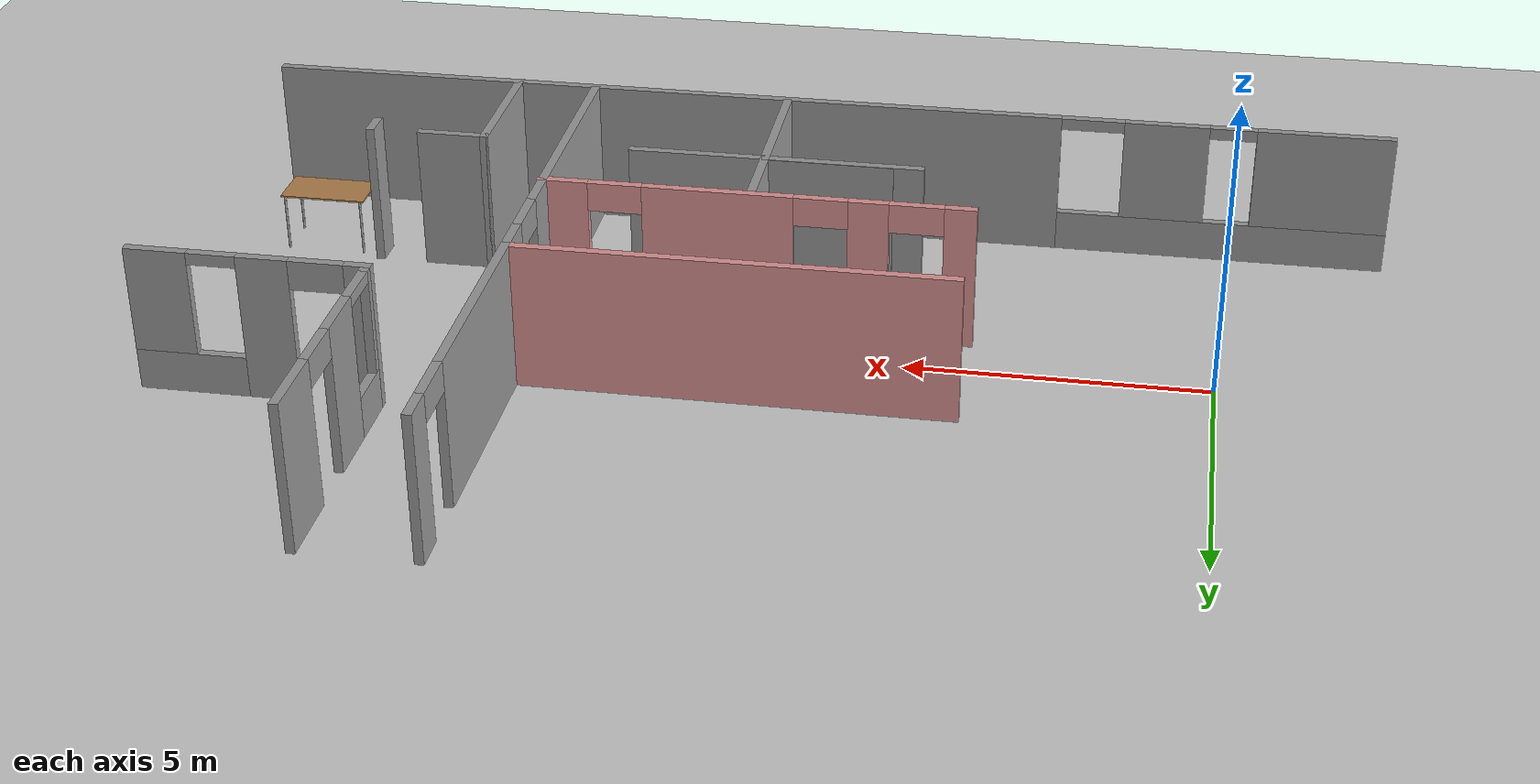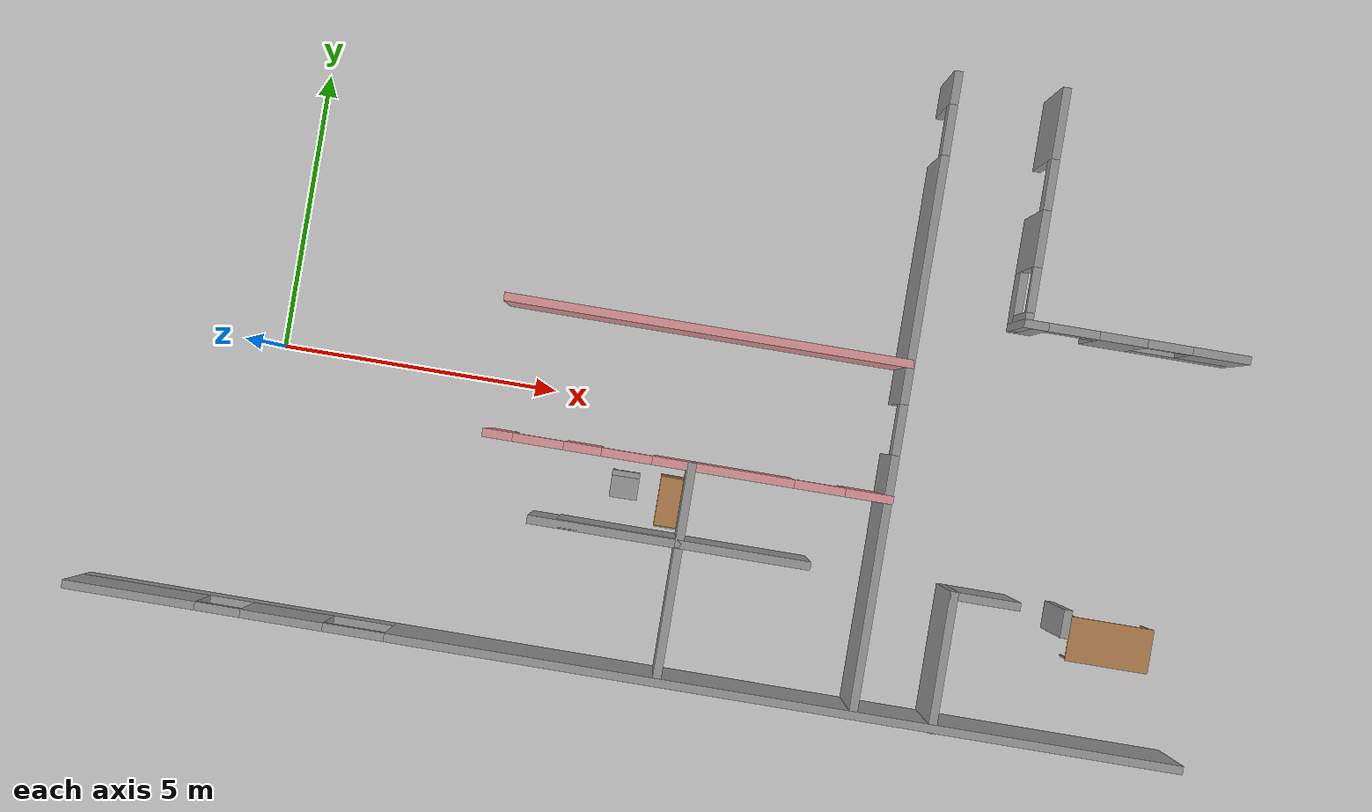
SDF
<sdf version="1.6">
 <world name="default">
  <model name="ground_plane">
   <static>1</static>
   <link name="link">
    <collision name="collision">
     <geometry><plane><normal>0 0 1</normal><size>100 100</size></plane></geometry>
     <surface>
      <contact><collide_bitmask>65535</collide_bitmask></contact>
      <friction><ode><mu>100</mu><mu2>50</mu2></ode></friction>
     </surface>
    </collision>
    <visual name="visual">
     <cast_shadows>0</cast_shadows>
     <geometry><plane><normal>0 0 1</normal><size>100 100</size></plane></geometry>
     <material>
      <script><uri>file://media/materials/scripts/gazebo.material</uri><name>Gazebo/Grey</name></script>
     </material>
    </visual>
   </link>
  </model>
  <model name="dunder_mifflin_scranton_full">
   <pose>4.5312 0.479645 0 0 -0 0</pose>
   <link name="Wall_31">
    <collision name="Wall_31_Collision">
     <geometry><box><size>7.25 0.15 2.5</size></box></geometry>
     <pose>0 0 1.25 0 -0 0</pose>
    </collision>
    <visual name="Wall_31_Visual">
     <pose>0 0 1.25 0 -0 0</pose>
     <geometry><box><size>7.25 0.15 2.5</size></box></geometry>
     <material>
      <script><uri>file://media/materials/scripts/gazebo.material</uri><name>Gazebo/Grey</name></script>
      <ambient>0.866667 0.584314 0.584314 1</ambient>
     </material>
     <meta><layer>0</layer></meta>
    </visual>
    <pose>3.02474 0.997169 0 0 -0 0</pose>
   </link>
   <link name="Wall_32">
    <pose>6.57474 -2.05283 0 0 -0 -1.5708</pose>
    <visual name="Wall_32_Visual_0">
     <pose>-2.72846 0 1.25 0 -0 0</pose>
     <geometry><box><size>0.793072 0.15 2.5</size></box></geometry>
     <material>
      <script><uri>file://media/materials/scripts/gazebo.material</uri><name>Gazebo/Grey</name></script>
      <ambient>1 1 1 1</ambient>
     </material>
     <meta><layer>0</layer></meta>
    </visual>
    <collision name="Wall_32_Collision_0">
     <geometry><box><size>0.793072 0.15 2.5</size></box></geometry>
     <pose>-2.72846 0 1.25 0 -0 0</pose>
    </collision>
    <visual name="Wall_32_Visual_1">
     <pose>0.846536 0 1.25 0 -0 0</pose>
     <geometry><box><size>4.55693 0.15 2.5</size></box></geometry>
     <material>
      <script><uri>file://media/materials/scripts/gazebo.material</uri><name>Gazebo/Grey</name></script>
      <ambient>1 1 1 1</ambient>
     </material>
     <meta><layer>0</layer></meta>
    </visual>
    <collision name="Wall_32_Collision_1">
     <geometry><box><size>4.55693 0.15 2.5</size></box></geometry>
     <pose>0.846536 0 1.25 0 -0 0</pose>
    </collision>
    <visual name="Wall_32_Visual_2">
     <pose>-1.88193 0 2.25 0 -0 0</pose>
     <geometry><box><size>0.9 0.15 0.5</size></box></geometry>
     <material>
      <script><uri>file://media/materials/scripts/gazebo.material</uri><name>Gazebo/Grey</name></script>
      <ambient>1 1 1 1</ambient>
     </material>
     <meta><layer>0</layer></meta>
    </visual>
    <collision name="Wall_32_Collision_2">
     <geometry><box><size>0.9 0.15 0.5</size></box></geometry>
     <pose>-1.88193 0 2.25 0 -0 0</pose>
    </collision>
   </link>
   <link name="Wall_34">
    <pose>3.04223 -1.39897 0 0 -0 0</pose>
    <visual name="Wall_34_Visual_0">
     <pose>-3.36018 0 1.25 0 -0 0</pose>
     <geometry><box><size>0.529643 0.15 2.5</size></box></geometry>
     <material>
      <script><uri>file://media/materials/scripts/gazebo.material</uri><name>Gazebo/Grey</name></script>
      <ambient>0.866667 0.584314 0.584314 1</ambient>
     </material>
     <meta><layer>0</layer></meta>
    </visual>
    <collision name="Wall_34_Collision_0">
     <geometry><box><size>0.529643 0.15 2.5</size></box></geometry>
     <pose>-3.36018 0 1.25 0 -0 0</pose>
    </collision>
    <visual name="Wall_34_Visual_1">
     <pose>-1.86211 0 1.25 0 -0 0</pose>
     <geometry><box><size>0.666501 0.15 2.5</size></box></geometry>
     <material>
      <script><uri>file://media/materials/scripts/gazebo.material</uri><name>Gazebo/Grey</name></script>
      <ambient>0.866667 0.584314 0.584314 1</ambient>
     </material>
     <meta><layer>0</layer></meta>
    </visual>
    <collision name="Wall_34_Collision_1">
     <geometry><box><size>0.666501 0.15 2.5</size></box></geometry>
     <pose>-1.86211 0 1.25 0 -0 0</pose>
    </collision>
    <visual name="Wall_34_Visual_2">
     <pose>0.624524 0 1.25 0 -0 0</pose>
     <geometry><box><size>2.50676 0.15 2.5</size></box></geometry>
     <material>
      <script><uri>file://media/materials/scripts/gazebo.material</uri><name>Gazebo/Grey</name></script>
      <ambient>0.866667 0.584314 0.584314 1</ambient>
     </material>
     <meta><layer>0</layer></meta>
    </visual>
    <collision name="Wall_34_Collision_2">
     <geometry><box><size>2.50676 0.15 2.5</size></box></geometry>
     <pose>0.624524 0 1.25 0 -0 0</pose>
    </collision>
    <visual name="Wall_34_Visual_3">
     <pose>3.20145 0 1.25 0 -0 0</pose>
     <geometry><box><size>0.847096 0.15 2.5</size></box></geometry>
     <material>
      <script><uri>file://media/materials/scripts/gazebo.material</uri><name>Gazebo/Grey</name></script>
      <ambient>0.866667 0.584314 0.584314 1</ambient>
     </material>
     <meta><layer>0</layer></meta>
    </visual>
    <collision name="Wall_34_Collision_3">
     <geometry><box><size>0.847096 0.15 2.5</size></box></geometry>
     <pose>3.20145 0 1.25 0 -0 0</pose>
    </collision>
    <visual name="Wall_34_Visual_4">
     <pose>-2.64536 0 2.25 0 -0 0</pose>
     <geometry><box><size>0.9 0.15 0.5</size></box></geometry>
     <material>
      <script><uri>file://media/materials/scripts/gazebo.material</uri><name>Gazebo/Grey</name></script>
      <ambient>0.866667 0.584314 0.584314 1</ambient>
     </material>
     <meta><layer>0</layer></meta>
    </visual>
    <collision name="Wall_34_Collision_4">
     <geometry><box><size>0.9 0.15 0.5</size></box></geometry>
     <pose>-2.64536 0 2.25 0 -0 0</pose>
    </collision>
    <visual name="Wall_34_Visual_5">
     <pose>-1.07886 0 2.25 0 -0 0</pose>
     <geometry><box><size>0.9 0.15 0.5</size></box></geometry>
     <material>
      <script><uri>file://media/materials/scripts/gazebo.material</uri><name>Gazebo/Grey</name></script>
      <ambient>0.866667 0.584314 0.584314 1</ambient>
     </material>
     <meta><layer>0</layer></meta>
    </visual>
    <collision name="Wall_34_Collision_5">
     <geometry><box><size>0.9 0.15 0.5</size></box></geometry>
     <pose>-1.07886 0 2.25 0 -0 0</pose>
    </collision>
    <visual name="Wall_34_Visual_6">
     <pose>2.3279 0 2.25 0 -0 0</pose>
     <geometry><box><size>0.9 0.15 0.5</size></box></geometry>
     <material>
      <script><uri>file://media/materials/scripts/gazebo.material</uri><name>Gazebo/Grey</name></script>
      <ambient>0.866667 0.584314 0.584314 1</ambient>
     </material>
     <meta><layer>0</layer></meta>
    </visual>
    <collision name="Wall_34_Collision_6">
     <geometry><box><size>0.9 0.15 0.5</size></box></geometry>
     <pose>2.3279 0 2.25 0 -0 0</pose>
    </collision>
   </link>
   <link name="Wall_36">
    <pose>6.57474 3.54717 0 0 -0 1.5708</pose>
    <visual name="Wall_36_Visual_0">
     <pose>-0.74582 0 1.25 0 -0 0</pose>
     <geometry><box><size>3.75836 0.15 2.5</size></box></geometry>
     <material>
      <script><uri>file://media/materials/scripts/gazebo.material</uri><name>Gazebo/Grey</name></script>
      <ambient>1 1 1 1</ambient>
     </material>
     <meta><layer>0</layer></meta>
    </visual>
    <collision name="Wall_36_Collision_0">
     <geometry><box><size>3.75836 0.15 2.5</size></box></geometry>
     <pose>-0.74582 0 1.25 0 -0 0</pose>
    </collision>
    <visual name="Wall_36_Visual_1">
     <pose>2.32918 0 1.25 0 -0 0</pose>
     <geometry><box><size>0.591641 0.15 2.5</size></box></geometry>
     <material>
      <script><uri>file://media/materials/scripts/gazebo.material</uri><name>Gazebo/Grey</name></script>
      <ambient>1 1 1 1</ambient>
     </material>
     <meta><layer>0</layer></meta>
    </visual>
    <collision name="Wall_36_Collision_1">
     <geometry><box><size>0.591641 0.15 2.5</size></box></geometry>
     <pose>2.32918 0 1.25 0 -0 0</pose>
    </collision>
    <visual name="Wall_36_Visual_2">
     <pose>1.58336 0 2.25 0 -0 0</pose>
     <geometry><box><size>0.9 0.15 0.5</size></box></geometry>
     <material>
      <script><uri>file://media/materials/scripts/gazebo.material</uri><name>Gazebo/Grey</name></script>
      <ambient>1 1 1 1</ambient>
     </material>
     <meta><layer>0</layer></meta>
    </visual>
    <collision name="Wall_36_Collision_2">
     <geometry><box><size>0.9 0.15 0.5</size></box></geometry>
     <pose>1.58336 0 2.25 0 -0 0</pose>
    </collision>
   </link>
   <link name="Wall_38">
    <pose>8.48212 4.07176 0 0 -0 -1.5708</pose>
    <visual name="Wall_38_Visual_0">
     <pose>-1.4899 0 1.25 0 -0 0</pose>
     <geometry><box><size>1.27021 0.15 2.5</size></box></geometry>
     <material>
      <script><uri>file://media/materials/scripts/gazebo.material</uri><name>Gazebo/Grey</name></script>
      <ambient>0.423529 0.423529 0.423529 1</ambient>
     </material>
     <meta><layer>0</layer></meta>
    </visual>
    <collision name="Wall_38_Collision_0">
     <geometry><box><size>1.27021 0.15 2.5</size></box></geometry>
     <pose>-1.4899 0 1.25 0 -0 0</pose>
    </collision>
    <visual name="Wall_38_Visual_1">
     <pose>0.548931 0 1.25 0 -0 0</pose>
     <geometry><box><size>1.00745 0.15 2.5</size></box></geometry>
     <material>
      <script><uri>file://media/materials/scripts/gazebo.material</uri><name>Gazebo/Grey</name></script>
      <ambient>0.423529 0.423529 0.423529 1</ambient>
     </material>
     <meta><layer>0</layer></meta>
    </visual>
    <collision name="Wall_38_Collision_1">
     <geometry><box><size>1.00745 0.15 2.5</size></box></geometry>
     <pose>0.548931 0 1.25 0 -0 0</pose>
    </collision>
    <visual name="Wall_38_Visual_2">
     <pose>1.58883 0 0.35 0 -0 0</pose>
     <geometry><box><size>1.07234 0.15 0.7</size></box></geometry>
     <material>
      <script><uri>file://media/materials/scripts/gazebo.material</uri><name>Gazebo/Grey</name></script>
      <ambient>0.423529 0.423529 0.423529 1</ambient>
     </material>
     <meta><layer>0</layer></meta>
    </visual>
    <collision name="Wall_38_Collision_2">
     <geometry><box><size>1.07234 0.15 0.7</size></box></geometry>
     <pose>1.58883 0 0.35 0 -0 0</pose>
    </collision>
    <visual name="Wall_38_Visual_3">
     <pose>1.98883 0 1.6 0 -0 0</pose>
     <geometry><box><size>0.272344 0.15 1.8</size></box></geometry>
     <material>
      <script><uri>file://media/materials/scripts/gazebo.material</uri><name>Gazebo/Grey</name></script>
      <ambient>0.423529 0.423529 0.423529 1</ambient>
     </material>
     <meta><layer>0</layer></meta>
    </visual>
    <collision name="Wall_38_Collision_3">
     <geometry><box><size>0.272344 0.15 1.8</size></box></geometry>
     <pose>1.98883 0 1.6 0 -0 0</pose>
    </collision>
    <visual name="Wall_38_Visual_4">
     <pose>-0.404794 0 2.25 0 -0 0</pose>
     <geometry><box><size>0.9 0.15 0.5</size></box></geometry>
     <material>
      <script><uri>file://media/materials/scripts/gazebo.material</uri><name>Gazebo/Grey</name></script>
      <ambient>0.423529 0.423529 0.423529 1</ambient>
     </material>
     <meta><layer>0</layer></meta>
    </visual>
    <collision name="Wall_38_Collision_4">
     <geometry><box><size>0.9 0.15 0.5</size></box></geometry>
     <pose>-0.404794 0 2.25 0 -0 0</pose>
    </collision>
    <visual name="Wall_38_Visual_5">
     <pose>1.45266 0 2.4 0 -0 0</pose>
     <geometry><box><size>0.8 0.15 0.2</size></box></geometry>
     <material>
      <script><uri>file://media/materials/scripts/gazebo.material</uri><name>Gazebo/Grey</name></script>
      <ambient>0.423529 0.423529 0.423529 1</ambient>
     </material>
     <meta><layer>0</layer></meta>
    </visual>
    <collision name="Wall_38_Collision_5">
     <geometry><box><size>0.8 0.15 0.2</size></box></geometry>
     <pose>1.45266 0 2.4 0 -0 0</pose>
    </collision>
   </link>
   <link name="Wall_39">
    <pose>10.4071 2.02176 0 0 -0 0</pose>
    <visual name="Wall_39_Visual_0">
     <pose>-1.78157 0 1.25 0 -0 0</pose>
     <geometry><box><size>0.436869 0.15 2.5</size></box></geometry>
     <material>
      <script><uri>file://media/materials/scripts/gazebo.material</uri><name>Gazebo/Grey</name></script>
      <ambient>0.423529 0.423529 0.423529 1</ambient>
     </material>
     <meta><layer>0</layer></meta>
    </visual>
    <collision name="Wall_39_Collision_0">
     <geometry><box><size>0.436869 0.15 2.5</size></box></geometry>
     <pose>-1.78157 0 1.25 0 -0 0</pose>
    </collision>
    <visual name="Wall_39_Visual_1">
     <pose>-0.241405 0 1.25 0 -0 0</pose>
     <geometry><box><size>0.843451 0.15 2.5</size></box></geometry>
     <material>
      <script><uri>file://media/materials/scripts/gazebo.material</uri><name>Gazebo/Grey</name></script>
      <ambient>0.423529 0.423529 0.423529 1</ambient>
     </material>
     <meta><layer>0</layer></meta>
    </visual>
    <collision name="Wall_39_Collision_1">
     <geometry><box><size>0.843451 0.15 2.5</size></box></geometry>
     <pose>-0.241405 0 1.25 0 -0 0</pose>
    </collision>
    <visual name="Wall_39_Visual_2">
     <pose>1.09016 0 0.35 0 -0 0</pose>
     <geometry><box><size>1.81968 0.15 0.7</size></box></geometry>
     <material>
      <script><uri>file://media/materials/scripts/gazebo.material</uri><name>Gazebo/Grey</name></script>
      <ambient>0.423529 0.423529 0.423529 1</ambient>
     </material>
     <meta><layer>0</layer></meta>
    </visual>
    <collision name="Wall_39_Collision_2">
     <geometry><box><size>1.81968 0.15 0.7</size></box></geometry>
     <pose>1.09016 0 0.35 0 -0 0</pose>
    </collision>
    <visual name="Wall_39_Visual_3">
     <pose>1.49016 0 1.6 0 -0 0</pose>
     <geometry><box><size>1.01968 0.15 1.8</size></box></geometry>
     <material>
      <script><uri>file://media/materials/scripts/gazebo.material</uri><name>Gazebo/Grey</name></script>
      <ambient>0.423529 0.423529 0.423529 1</ambient>
     </material>
     <meta><layer>0</layer></meta>
    </visual>
    <collision name="Wall_39_Collision_3">
     <geometry><box><size>1.01968 0.15 1.8</size></box></geometry>
     <pose>1.49016 0 1.6 0 -0 0</pose>
    </collision>
    <visual name="Wall_39_Visual_4">
     <pose>-1.11313 0 2.25 0 -0 0</pose>
     <geometry><box><size>0.9 0.15 0.5</size></box></geometry>
     <material>
      <script><uri>file://media/materials/scripts/gazebo.material</uri><name>Gazebo/Grey</name></script>
      <ambient>0.423529 0.423529 0.423529 1</ambient>
     </material>
     <meta><layer>0</layer></meta>
    </visual>
    <collision name="Wall_39_Collision_4">
     <geometry><box><size>0.9 0.15 0.5</size></box></geometry>
     <pose>-1.11313 0 2.25 0 -0 0</pose>
    </collision>
    <visual name="Wall_39_Visual_5">
     <pose>0.58032 0 2.4 0 -0 0</pose>
     <geometry><box><size>0.8 0.15 0.2</size></box></geometry>
     <material>
      <script><uri>file://media/materials/scripts/gazebo.material</uri><name>Gazebo/Grey</name></script>
      <ambient>0.423529 0.423529 0.423529 1</ambient>
     </material>
     <meta><layer>0</layer></meta>
    </visual>
    <collision name="Wall_39_Collision_5">
     <geometry><box><size>0.8 0.15 0.2</size></box></geometry>
     <pose>0.58032 0 2.4 0 -0 0</pose>
    </collision>
   </link>
   <link name="Wall_42">
    <collision name="Wall_42_Collision">
     <geometry><box><size>0.5 0.15 2.5</size></box></geometry>
     <pose>0 0 1.25 0 -0 0</pose>
    </collision>
    <visual name="Wall_42_Visual">
     <pose>0 0 1.25 0 -0 0</pose>
     <geometry><box><size>0.5 0.15 2.5</size></box></geometry>
     <material>
      <script><uri>file://media/materials/scripts/gazebo.material</uri><name>Gazebo/Grey</name></script>
      <ambient>1 1 1 1</ambient>
     </material>
     <meta><layer>0</layer></meta>
    </visual>
    <pose>9.97994 -3.02564 0 0 -0 -1.5708</pose>
   </link>
   <link name="Wall_44">
    <collision name="Wall_44_Collision">
     <geometry><box><size>2.5 0.15 2.5</size></box></geometry>
     <pose>0 0 1.25 0 -0 0</pose>
    </collision>
    <visual name="Wall_44_Visual">
     <pose>0 0 1.25 0 -0 0</pose>
     <geometry><box><size>2.5 0.15 2.5</size></box></geometry>
     <material>
      <script><uri>file://media/materials/scripts/gazebo.material</uri><name>Gazebo/Grey</name></script>
      <ambient>1 1 1 1</ambient>
     </material>
     <meta><layer>0</layer></meta>
    </visual>
    <pose>7.97491 -4.0368 0 0 -0 1.5708</pose>
   </link>
   <link name="Wall_45">
    <collision name="Wall_45_Collision">
     <geometry><box><size>1.25 0.15 2.5</size></box></geometry>
     <pose>0 0 1.25 0 -0 0</pose>
    </collision>
    <visual name="Wall_45_Visual">
     <pose>0 0 1.25 0 -0 0</pose>
     <geometry><box><size>1.25 0.15 2.5</size></box></geometry>
     <material>
      <script><uri>file://media/materials/scripts/gazebo.material</uri><name>Gazebo/Grey</name></script>
      <ambient>1 1 1 1</ambient>
     </material>
     <meta><layer>0</layer></meta>
    </visual>
    <pose>8.52491 -2.8618 0 0 -0 0</pose>
   </link>
   <link name="Wall_56">
    <collision name="Wall_56_Collision">
     <geometry><box><size>2.25 0.15 2.5</size></box></geometry>
     <pose>0 0 1.25 0 -0 0</pose>
    </collision>
    <visual name="Wall_56_Visual">
     <pose>0 0 1.25 0 -0 0</pose>
     <geometry><box><size>2.25 0.15 2.5</size></box></geometry>
     <material>
      <script><uri>file://media/materials/scripts/gazebo.material</uri><name>Gazebo/Grey</name></script>
      <ambient>1 1 1 1</ambient>
     </material>
     <meta><layer>0</layer></meta>
    </visual>
    <pose>2.06386 -2.74897 0 0 -0 0</pose>
   </link>
   <link name="Wall_57">
    <collision name="Wall_57_Collision">
     <geometry><box><size>2.5 0.15 2.5</size></box></geometry>
     <pose>0 0 1.25 0 -0 0</pose>
    </collision>
    <visual name="Wall_57_Visual">
     <pose>0 0 1.25 0 -0 0</pose>
     <geometry><box><size>2.5 0.15 2.5</size></box></geometry>
     <material>
      <script><uri>file://media/materials/scripts/gazebo.material</uri><name>Gazebo/Grey</name></script>
      <ambient>1 1 1 1</ambient>
     </material>
     <meta><layer>0</layer></meta>
    </visual>
    <pose>3.11387 -3.92397 0 0 -0 -1.5708</pose>
   </link>
   <link name="Wall_59">
    <collision name="Wall_59_Collision">
     <geometry><box><size>1.5 0.15 2.5</size></box></geometry>
     <pose>0 0 1.25 0 -0 0</pose>
    </collision>
    <visual name="Wall_59_Visual">
     <pose>0 0 1.25 0 -0 0</pose>
     <geometry><box><size>1.5 0.15 2.5</size></box></geometry>
     <material>
      <script><uri>file://media/materials/scripts/gazebo.material</uri><name>Gazebo/Grey</name></script>
      <ambient>1 1 1 1</ambient>
     </material>
     <meta><layer>0</layer></meta>
    </visual>
    <pose>3.11387 -2.07397 0 0 -0 1.5708</pose>
   </link>
   <link name="Wall_62">
    <collision name="Wall_62_Collision">
     <geometry><box><size>5 0.15 2.5</size></box></geometry>
     <pose>0 0 1.25 0 -0 0</pose>
    </collision>
    <visual name="Wall_62_Visual">
     <pose>0 0 1.25 0 -0 0</pose>
     <geometry><box><size>5 0.15 2.5</size></box></geometry>
     <material>
      <script><uri>file://media/materials/scripts/gazebo.material</uri><name>Gazebo/Grey</name></script>
      <ambient>1 1 1 1</ambient>
     </material>
     <meta><layer>0</layer></meta>
    </visual>
    <pose>2.93165 -2.76319 0 0 -0 0</pose>
   </link>
   <link name="Wall_8">
    <pose>2.51788 -5.2 0 0 -0 3.14159</pose>
    <visual name="Wall_8_Visual_0">
     <pose>-2.83559 0 1.25 0 -0 0</pose>
     <geometry><box><size>14.0788 0.15 2.5</size></box></geometry>
     <material>
      <script><uri>file://media/materials/scripts/gazebo.material</uri><name>Gazebo/Grey</name></script>
      <ambient>1 1 1 1</ambient>
     </material>
     <meta><layer>0</layer></meta>
    </visual>
    <collision name="Wall_8_Collision_0">
     <geometry><box><size>14.0788 0.15 2.5</size></box></geometry>
     <pose>-2.83559 0 1.25 0 -0 0</pose>
    </collision>
    <visual name="Wall_8_Visual_1">
     <pose>7.03941 0 0.35 0 -0 0</pose>
     <geometry><box><size>5.67118 0.15 0.7</size></box></geometry>
     <material>
      <script><uri>file://media/materials/scripts/gazebo.material</uri><name>Gazebo/Grey</name></script>
      <ambient>1 1 1 1</ambient>
     </material>
     <meta><layer>0</layer></meta>
    </visual>
    <collision name="Wall_8_Collision_1">
     <geometry><box><size>5.67118 0.15 0.7</size></box></geometry>
     <pose>7.03941 0 0.35 0 -0 0</pose>
    </collision>
    <visual name="Wall_8_Visual_2">
     <pose>6.0123 0 1.6 0 -0 0</pose>
     <geometry><box><size>1.45519 0.15 1.8</size></box></geometry>
     <material>
      <script><uri>file://media/materials/scripts/gazebo.material</uri><name>Gazebo/Grey</name></script>
      <ambient>1 1 1 1</ambient>
     </material>
     <meta><layer>0</layer></meta>
    </visual>
    <collision name="Wall_8_Collision_2">
     <geometry><box><size>1.45519 0.15 1.8</size></box></geometry>
     <pose>6.0123 0 1.6 0 -0 0</pose>
    </collision>
    <visual name="Wall_8_Visual_3">
     <pose>8.70745 0 1.6 0 -0 0</pose>
     <geometry><box><size>2.33511 0.15 1.8</size></box></geometry>
     <material>
      <script><uri>file://media/materials/scripts/gazebo.material</uri><name>Gazebo/Grey</name></script>
      <ambient>1 1 1 1</ambient>
     </material>
     <meta><layer>0</layer></meta>
    </visual>
    <collision name="Wall_8_Collision_3">
     <geometry><box><size>2.33511 0.15 1.8</size></box></geometry>
     <pose>8.70745 0 1.6 0 -0 0</pose>
    </collision>
    <visual name="Wall_8_Visual_4">
     <pose>4.74426 0 2.4 0 -0 0</pose>
     <geometry><box><size>1.08089 0.15 0.2</size></box></geometry>
     <material>
      <script><uri>file://media/materials/scripts/gazebo.material</uri><name>Gazebo/Grey</name></script>
      <ambient>1 1 1 1</ambient>
     </material>
     <meta><layer>0</layer></meta>
    </visual>
    <collision name="Wall_8_Collision_4">
     <geometry><box><size>1.08089 0.15 0.2</size></box></geometry>
     <pose>4.74426 0 2.4 0 -0 0</pose>
    </collision>
    <visual name="Wall_8_Visual_5">
     <pose>7.13989 0 2.4 0 -0 0</pose>
     <geometry><box><size>0.8 0.15 0.2</size></box></geometry>
     <material>
      <script><uri>file://media/materials/scripts/gazebo.material</uri><name>Gazebo/Grey</name></script>
      <ambient>1 1 1 1</ambient>
     </material>
     <meta><layer>0</layer></meta>
    </visual>
    <collision name="Wall_8_Collision_5">
     <geometry><box><size>0.8 0.15 0.2</size></box></geometry>
     <pose>7.13989 0 2.4 0 -0 0</pose>
    </collision>
   </link>
   <static>1</static>
  </model>
  <model name="table_11">
   <static>1</static>
   <link name="link">
    <collision name="surface">
     <pose>0 0 1 0 -0 0</pose>
     <geometry><box><size>1.5 0.8 0.03</size></box></geometry>
     <surface><friction><ode><mu>0.6</mu><mu2>0.6</mu2></ode></friction></surface>
    </collision>
    <visual name="visual1">
     <pose>0 0 1 0 -0 0</pose>
     <geometry><box><size>1.5 0.8 0.03</size></box></geometry>
     <material>
      <script><uri>file://media/materials/scripts/gazebo.material</uri><name>Gazebo/Wood</name></script>
     </material>
    </visual>
    <collision name="front_left_leg">
     <pose>0.68 0.38 0.5 0 -0 0</pose>
     <geometry><cylinder><radius>0.02</radius><length>1</length></cylinder></geometry>
    </collision>
    <visual name="front_left_leg">
     <pose>0.68 0.38 0.5 0 -0 0</pose>
     <geometry><cylinder><radius>0.02</radius><length>1</length></cylinder></geometry>
     <material>
      <script><uri>file://media/materials/scripts/gazebo.material</uri><name>Gazebo/Grey</name></script>
     </material>
    </visual>
    <collision name="front_right_leg">
     <pose>0.68 -0.38 0.5 0 -0 0</pose>
     <geometry><cylinder><radius>0.02</radius><length>1</length></cylinder></geometry>
    </collision>
    <visual name="front_right_leg">
     <pose>0.68 -0.38 0.5 0 -0 0</pose>
     <geometry><cylinder><radius>0.02</radius><length>1</length></cylinder></geometry>
     <material>
      <script><uri>file://media/materials/scripts/gazebo.material</uri><name>Gazebo/Grey</name></script>
     </material>
    </visual>
    <collision name="back_right_leg">
     <pose>-0.68 -0.38 0.5 0 -0 0</pose>
     <geometry><cylinder><radius>0.02</radius><length>1</length></cylinder></geometry>
    </collision>
    <visual name="back_right_leg">
     <pose>-0.68 -0.38 0.5 0 -0 0</pose>
     <geometry><cylinder><radius>0.02</radius><length>1</length></cylinder></geometry>
     <material>
      <script><uri>file://media/materials/scripts/gazebo.material</uri><name>Gazebo/Grey</name></script>
     </material>
    </visual>
    <collision name="back_left_leg">
     <pose>-0.68 0.38 0.5 0 -0 0</pose>
     <geometry><cylinder><radius>0.02</radius><length>1</length></cylinder></geometry>
    </collision>
    <visual name="back_left_leg">
     <pose>-0.68 0.38 0.5 0 -0 0</pose>
     <geometry><cylinder><radius>0.02</radius><length>1</length></cylinder></geometry>
     <material>
      <script><uri>file://media/materials/scripts/gazebo.material</uri><name>Gazebo/Grey</name></script>
     </material>
    </visual>
   </link>
   <pose>15.5613 -2.85832 0 0 -0 0</pose>
  </model>
  <model name="bookshelf_2">
   <static>1</static>
   <link name="link">
    <inertial><mass>1</mass></inertial>
    <collision name="back">
     <pose>0 0.005 0.6 0 -0 0</pose>
     <geometry><box><size>0.9 0.01 1.2</size></box></geometry>
    </collision>
    <visual name="visual1">
     <pose>0 0.005 0.6 0 -0 0</pose>
     <geometry><box><size>0.9 0.01 1.2</size></box></geometry>
     <material>
      <script><uri>file://media/materials/scripts/gazebo.material</uri><name>Gazebo/Wood</name></script>
     </material>
    </visual>
    <collision name="left_side">
     <pose>0.45 -0.195 0.6 0 -0 0</pose>
     <geometry><box><size>0.02 0.4 1.2</size></box></geometry>
    </collision>
    <visual name="visual2">
     <pose>0.45 -0.195 0.6 0 -0 0</pose>
     <geometry><box><size>0.02 0.4 1.2</size></box></geometry>
     <material>
      <script><uri>file://media/materials/scripts/gazebo.material</uri><name>Gazebo/Wood</name></script>
     </material>
    </visual>
    <collision name="right_side">
     <pose>-0.45 -0.195 0.6 0 -0 0</pose>
     <geometry><box><size>0.02 0.4 1.2</size></box></geometry>
    </collision>
    <visual name="visual3">
     <pose>-0.45 -0.195 0.6 0 -0 0</pose>
     <geometry><box><size>0.02 0.4 1.2</size></box></geometry>
     <material>
      <script><uri>file://media/materials/scripts/gazebo.material</uri><name>Gazebo/Wood</name></script>
     </material>
    </visual>
    <collision name="bottom">
     <pose>0 -0.195 0.03 0 -0 0</pose>
     <geometry><box><size>0.88 0.4 0.06</size></box></geometry>
    </collision>
    <visual name="visual4">
     <pose>0 -0.195 0.03 0 -0 0</pose>
     <geometry><box><size>0.88 0.4 0.06</size></box></geometry>
     <material>
      <script><uri>file://media/materials/scripts/gazebo.material</uri><name>Gazebo/Wood</name></script>
     </material>
    </visual>
    <collision name="top">
     <pose>0 -0.195 1.19 0 -0 0</pose>
     <geometry><box><size>0.88 0.4 0.02</size></box></geometry>
    </collision>
    <visual name="visual5">
     <pose>0 -0.195 1.19 0 -0 0</pose>
     <geometry><box><size>0.88 0.4 0.02</size></box></geometry>
     <material>
      <script><uri>file://media/materials/scripts/gazebo.material</uri><name>Gazebo/Wood</name></script>
     </material>
    </visual>
    <collision name="low_shelf">
     <pose>0 -0.195 0.43 0 -0 0</pose>
     <geometry><box><size>0.88 0.4 0.02</size></box></geometry>
    </collision>
    <visual name="visual6">
     <pose>0 -0.195 0.43 0 -0 0</pose>
     <geometry><box><size>0.88 0.4 0.02</size></box></geometry>
     <material>
      <script><uri>file://media/materials/scripts/gazebo.material</uri><name>Gazebo/Wood</name></script>
     </material>
    </visual>
    <collision name="high_shelf">
     <pose>0 -0.195 0.8 0 -0 0</pose>
     <geometry><box><size>0.88 0.4 0.02</size></box></geometry>
    </collision>
    <visual name="visual7">
     <pose>0 -0.195 0.8 0 -0 0</pose>
     <geometry><box><size>0.88 0.4 0.02</size></box></geometry>
     <material>
      <script><uri>file://media/materials/scripts/gazebo.material</uri><name>Gazebo/Wood</name></script>
     </material>
    </visual>
   </link>
   <pose>7.55137 -1.62343 0 0 0 -1.5708</pose>
  </model>
  <model name="chair_13">
   <link name="link_0">
    <inertial>
     <mass>1</mass>
     <inertia><ixx>0.145833</ixx><ixy>0</ixy><ixz>0</ixz><iyy>0.145833</iyy><iyz>0</iyz><izz>0.125</izz></inertia>
    </inertial>
    <pose>-0.23 -0.19667 -0.280001 0 -0 0</pose>
    <visual name="visual">
     <geometry><cylinder><radius>0.02</radius><length>0.5</length></cylinder></geometry>
     <material>
      <lighting>1</lighting>
      <script><uri>file://media/materials/scripts/gazebo.material</uri><name>Gazebo/Grey</name></script>
      <shader type="vertex"><normal_map>__default__</normal_map></shader>
      <ambient>0.3 0.3 0.3 1</ambient>
      <diffuse>0.7 0.7 0.7 1</diffuse>
      <specular>0.01 0.01 0.01 1</specular>
      <emissive>0 0 0 1</emissive>
     </material>
    </visual>
    <collision name="collision">
     <geometry><cylinder><radius>0.02</radius><length>0.5</length></cylinder></geometry>
     <surface>
      <friction>
       <ode><mu>1</mu><mu2>1</mu2><fdir1>0 0 0</fdir1><slip1>0</slip1><slip2>0</slip2></ode>
       <torsional>
        <coefficient>1</coefficient>
        <patch_radius>0</patch_radius>
        <surface_radius>0</surface_radius>
        <use_patch_radius>1</use_patch_radius>
        <ode><slip>0</slip></ode>
       </torsional>
      </friction>
      <bounce><restitution_coefficient>0</restitution_coefficient><threshold>1e+06</threshold></bounce>
      <contact>
       <collide_without_contact>0</collide_without_contact>
       <collide_without_contact_bitmask>1</collide_without_contact_bitmask>
       <collide_bitmask>1</collide_bitmask>
       <ode>
        <soft_cfm>0</soft_cfm>
        <soft_erp>0.2</soft_erp>
        <kp>1e+13</kp>
        <kd>1</kd>
        <max_vel>0.01</max_vel>
        <min_depth>0</min_depth>
       </ode>
       <bullet>
        <split_impulse>1</split_impulse>
        <split_impulse_penetration_threshold>-0.01</split_impulse_penetration_threshold>
        <soft_cfm>0</soft_cfm>
        <soft_erp>0.2</soft_erp>
        <kp>1e+13</kp>
        <kd>1</kd>
       </bullet>
      </contact>
     </surface>
    </collision>
   </link>
   <link name="link_0_clone">
    <inertial>
     <mass>1</mass>
     <inertia><ixx>0.145833</ixx><ixy>0</ixy><ixz>0</ixz><iyy>0.145833</iyy><iyz>0</iyz><izz>0.125</izz></inertia>
    </inertial>
    <pose>0.23 -0.19667 -0.280001 0 -0 0</pose>
    <visual name="visual">
     <geometry><cylinder><radius>0.02</radius><length>0.5</length></cylinder></geometry>
     <material>
      <lighting>1</lighting>
      <script><uri>file://media/materials/scripts/gazebo.material</uri><name>Gazebo/Grey</name></script>
      <shader type="vertex"><normal_map>__default__</normal_map></shader>
      <ambient>0.3 0.3 0.3 1</ambient>
      <diffuse>0.7 0.7 0.7 1</diffuse>
      <specular>0.01 0.01 0.01 1</specular>
      <emissive>0 0 0 1</emissive>
     </material>
    </visual>
    <collision name="collision">
     <geometry><cylinder><radius>0.02</radius><length>0.5</length></cylinder></geometry>
     <surface>
      <friction>
       <ode><mu>1</mu><mu2>1</mu2><fdir1>0 0 0</fdir1><slip1>0</slip1><slip2>0</slip2></ode>
       <torsional>
        <coefficient>1</coefficient>
        <patch_radius>0</patch_radius>
        <surface_radius>0</surface_radius>
        <use_patch_radius>1</use_patch_radius>
        <ode><slip>0</slip></ode>
       </torsional>
      </friction>
      <bounce><restitution_coefficient>0</restitution_coefficient><threshold>1e+06</threshold></bounce>
      <contact>
       <collide_without_contact>0</collide_without_contact>
       <collide_without_contact_bitmask>1</collide_without_contact_bitmask>
       <collide_bitmask>1</collide_bitmask>
       <ode>
        <soft_cfm>0</soft_cfm>
        <soft_erp>0.2</soft_erp>
        <kp>1e+13</kp>
        <kd>1</kd>
        <max_vel>0.01</max_vel>
        <min_depth>0</min_depth>
       </ode>
       <bullet>
        <split_impulse>1</split_impulse>
        <split_impulse_penetration_threshold>-0.01</split_impulse_penetration_threshold>
        <soft_cfm>0</soft_cfm>
        <soft_erp>0.2</soft_erp>
        <kp>1e+13</kp>
        <kd>1</kd>
       </bullet>
      </contact>
     </surface>
    </collision>
   </link>
   <link name="link_0_clone_0">
    <inertial>
     <mass>1</mass>
     <inertia><ixx>0.145833</ixx><ixy>0</ixy><ixz>0</ixz><iyy>0.145833</iyy><iyz>0</iyz><izz>0.125</izz></inertia>
    </inertial>
    <pose>0.23 0.26333 -0.280001 0 -0 0</pose>
    <visual name="visual">
     <geometry><cylinder><radius>0.02</radius><length>0.5</length></cylinder></geometry>
     <material>
      <lighting>1</lighting>
      <script><uri>file://media/materials/scripts/gazebo.material</uri><name>Gazebo/Grey</name></script>
      <shader type="vertex"><normal_map>__default__</normal_map></shader>
      <ambient>0.3 0.3 0.3 1</ambient>
      <diffuse>0.7 0.7 0.7 1</diffuse>
      <specular>0.01 0.01 0.01 1</specular>
      <emissive>0 0 0 1</emissive>
     </material>
    </visual>
    <collision name="collision">
     <geometry><cylinder><radius>0.02</radius><length>0.5</length></cylinder></geometry>
     <surface>
      <friction>
       <ode><mu>1</mu><mu2>1</mu2><fdir1>0 0 0</fdir1><slip1>0</slip1><slip2>0</slip2></ode>
       <torsional>
        <coefficient>1</coefficient>
        <patch_radius>0</patch_radius>
        <surface_radius>0</surface_radius>
        <use_patch_radius>1</use_patch_radius>
        <ode><slip>0</slip></ode>
       </torsional>
      </friction>
      <bounce><restitution_coefficient>0</restitution_coefficient><threshold>1e+06</threshold></bounce>
      <contact>
       <collide_without_contact>0</collide_without_contact>
       <collide_without_contact_bitmask>1</collide_without_contact_bitmask>
       <collide_bitmask>1</collide_bitmask>
       <ode>
        <soft_cfm>0</soft_cfm>
        <soft_erp>0.2</soft_erp>
        <kp>1e+13</kp>
        <kd>1</kd>
        <max_vel>0.01</max_vel>
        <min_depth>0</min_depth>
       </ode>
       <bullet>
        <split_impulse>1</split_impulse>
        <split_impulse_penetration_threshold>-0.01</split_impulse_penetration_threshold>
        <soft_cfm>0</soft_cfm>
        <soft_erp>0.2</soft_erp>
        <kp>1e+13</kp>
        <kd>1</kd>
       </bullet>
      </contact>
     </surface>
    </collision>
   </link>
   <link name="link_0_clone_1">
    <inertial>
     <mass>1</mass>
     <inertia><ixx>0.145833</ixx><ixy>0</ixy><ixz>0</ixz><iyy>0.145833</iyy><iyz>0</iyz><izz>0.125</izz></inertia>
    </inertial>
    <pose>-0.23 0.26333 -0.280001 0 -0 0</pose>
    <visual name="visual">
     <geometry><cylinder><radius>0.02</radius><length>0.5</length></cylinder></geometry>
     <material>
      <lighting>1</lighting>
      <script><uri>file://media/materials/scripts/gazebo.material</uri><name>Gazebo/Grey</name></script>
      <shader type="vertex"><normal_map>__default__</normal_map></shader>
      <ambient>0.3 0.3 0.3 1</ambient>
      <diffuse>0.7 0.7 0.7 1</diffuse>
      <specular>0.01 0.01 0.01 1</specular>
      <emissive>0 0 0 1</emissive>
     </material>
    </visual>
    <collision name="collision">
     <geometry><cylinder><radius>0.02</radius><length>0.5</length></cylinder></geometry>
     <surface>
      <friction>
       <ode><mu>1</mu><mu2>1</mu2><fdir1>0 0 0</fdir1><slip1>0</slip1><slip2>0</slip2></ode>
       <torsional>
        <coefficient>1</coefficient>
        <patch_radius>0</patch_radius>
        <surface_radius>0</surface_radius>
        <use_patch_radius>1</use_patch_radius>
        <ode><slip>0</slip></ode>
       </torsional>
      </friction>
      <bounce><restitution_coefficient>0</restitution_coefficient><threshold>1e+06</threshold></bounce>
      <contact>
       <collide_without_contact>0</collide_without_contact>
       <collide_without_contact_bitmask>1</collide_without_contact_bitmask>
       <collide_bitmask>1</collide_bitmask>
       <ode>
        <soft_cfm>0</soft_cfm>
        <soft_erp>0.2</soft_erp>
        <kp>1e+13</kp>
        <kd>1</kd>
        <max_vel>0.01</max_vel>
        <min_depth>0</min_depth>
       </ode>
       <bullet>
        <split_impulse>1</split_impulse>
        <split_impulse_penetration_threshold>-0.01</split_impulse_penetration_threshold>
        <soft_cfm>0</soft_cfm>
        <soft_erp>0.2</soft_erp>
        <kp>1e+13</kp>
        <kd>1</kd>
       </bullet>
      </contact>
     </surface>
    </collision>
   </link>
   <link name="link_2">
    <inertial>
     <mass>1</mass>
     <inertia>
      <ixx>0.166667</ixx>
      <ixy>0</ixy>
      <ixz>0</ixz>
      <iyy>0.166667</iyy>
      <iyz>0</iyz>
      <izz>0.166667</izz>
     </inertia>
    </inertial>
    <pose>0 0.03333 0.019999 0 -0 0</pose>
    <visual name="visual">
     <geometry><box><size>0.5 0.5 0.1</size></box></geometry>
     <material>
      <lighting>1</lighting>
      <script><uri>file://media/materials/scripts/gazebo.material</uri><name>Gazebo/Grey</name></script>
      <shader type="vertex"><normal_map>__default__</normal_map></shader>
      <ambient>0.3 0.3 0.3 1</ambient>
      <diffuse>0.7 0.7 0.7 1</diffuse>
      <specular>0.01 0.01 0.01 1</specular>
      <emissive>0 0 0 1</emissive>
     </material>
    </visual>
    <collision name="collision">
     <geometry><box><size>0.5 0.5 0.1</size></box></geometry>
     <surface>
      <friction>
       <ode><mu>1</mu><mu2>1</mu2><fdir1>0 0 0</fdir1><slip1>0</slip1><slip2>0</slip2></ode>
       <torsional>
        <coefficient>1</coefficient>
        <patch_radius>0</patch_radius>
        <surface_radius>0</surface_radius>
        <use_patch_radius>1</use_patch_radius>
        <ode><slip>0</slip></ode>
       </torsional>
      </friction>
      <bounce><restitution_coefficient>0</restitution_coefficient><threshold>1e+06</threshold></bounce>
      <contact>
       <collide_without_contact>0</collide_without_contact>
       <collide_without_contact_bitmask>1</collide_without_contact_bitmask>
       <collide_bitmask>1</collide_bitmask>
       <ode>
        <soft_cfm>0</soft_cfm>
        <soft_erp>0.2</soft_erp>
        <kp>1e+13</kp>
        <kd>1</kd>
        <max_vel>0.01</max_vel>
        <min_depth>0</min_depth>
       </ode>
       <bullet>
        <split_impulse>1</split_impulse>
        <split_impulse_penetration_threshold>-0.01</split_impulse_penetration_threshold>
        <soft_cfm>0</soft_cfm>
        <soft_erp>0.2</soft_erp>
        <kp>1e+13</kp>
        <kd>1</kd>
       </bullet>
      </contact>
     </surface>
    </collision>
   </link>
   <link name="link_2_clone">
    <inertial>
     <mass>1</mass>
     <inertia>
      <ixx>0.166667</ixx>
      <ixy>0</ixy>
      <ixz>0</ixz>
      <iyy>0.166667</iyy>
      <iyz>0</iyz>
      <izz>0.166667</izz>
     </inertia>
    </inertial>
    <pose>0 -0.166646 0.220004 1.5707 -0 0</pose>
    <visual name="visual">
     <geometry><box><size>0.5 0.5 0.1</size></box></geometry>
     <material>
      <lighting>1</lighting>
      <script><uri>file://media/materials/scripts/gazebo.material</uri><name>Gazebo/Grey</name></script>
      <shader type="vertex"><normal_map>__default__</normal_map></shader>
      <ambient>0.3 0.3 0.3 1</ambient>
      <diffuse>0.7 0.7 0.7 1</diffuse>
      <specular>0.01 0.01 0.01 1</specular>
      <emissive>0 0 0 1</emissive>
     </material>
    </visual>
    <collision name="collision">
     <geometry><box><size>0.5 0.5 0.1</size></box></geometry>
     <surface>
      <friction>
       <ode><mu>1</mu><mu2>1</mu2><fdir1>0 0 0</fdir1><slip1>0</slip1><slip2>0</slip2></ode>
       <torsional>
        <coefficient>1</coefficient>
        <patch_radius>0</patch_radius>
        <surface_radius>0</surface_radius>
        <use_patch_radius>1</use_patch_radius>
        <ode><slip>0</slip></ode>
       </torsional>
      </friction>
      <bounce><restitution_coefficient>0</restitution_coefficient><threshold>1e+06</threshold></bounce>
      <contact>
       <collide_without_contact>0</collide_without_contact>
       <collide_without_contact_bitmask>1</collide_without_contact_bitmask>
       <collide_bitmask>1</collide_bitmask>
       <ode>
        <soft_cfm>0</soft_cfm>
        <soft_erp>0.2</soft_erp>
        <kp>1e+13</kp>
        <kd>1</kd>
        <max_vel>0.01</max_vel>
        <min_depth>0</min_depth>
       </ode>
       <bullet>
        <split_impulse>1</split_impulse>
        <split_impulse_penetration_threshold>-0.01</split_impulse_penetration_threshold>
        <soft_cfm>0</soft_cfm>
        <soft_erp>0.2</soft_erp>
        <kp>1e+13</kp>
        <kd>1</kd>
       </bullet>
      </contact>
     </surface>
    </collision>
   </link>
   <joint name="link_0_clone_JOINT_2" type="fixed">
    <parent>link_2</parent>
    <child>link_0_clone</child>
    <physics>
     <ode><limit><cfm>0</cfm><erp>0.2</erp></limit><suspension><cfm>0</cfm><erp>0.2</erp></suspension></ode>
    </physics>
   </joint>
   <joint name="link_2_JOINT_1" type="fixed">
    <parent>link_2</parent>
    <child>link_0</child>
    <physics>
     <ode><limit><cfm>0</cfm><erp>0.2</erp></limit><suspension><cfm>0</cfm><erp>0.2</erp></suspension></ode>
    </physics>
   </joint>
   <joint name="link_2_JOINT_3" type="fixed">
    <parent>link_2</parent>
    <child>link_0_clone_0</child>
    <physics>
     <ode><limit><cfm>0</cfm><erp>0.2</erp></limit><suspension><cfm>0</cfm><erp>0.2</erp></suspension></ode>
    </physics>
   </joint>
   <joint name="link_2_JOINT_4" type="fixed">
    <parent>link_2</parent>
    <child>link_0_clone_1</child>
    <physics>
     <ode><limit><cfm>0</cfm><erp>0.2</erp></limit><suspension><cfm>0</cfm><erp>0.2</erp></suspension></ode>
    </physics>
   </joint>
   <joint name="link_2_JOINT_5" type="fixed">
    <parent>link_2</parent>
    <child>link_2_clone</child>
    <physics>
     <ode><limit><cfm>0</cfm><erp>0.2</erp></limit><suspension><cfm>0</cfm><erp>0.2</erp></suspension></ode>
    </physics>
   </joint>
   <static>0</static>
   <pose>6.52719 -1.42615 0.529996 1e-06 -0 -3.13034</pose>
  </model>
 </world>
</sdf>
